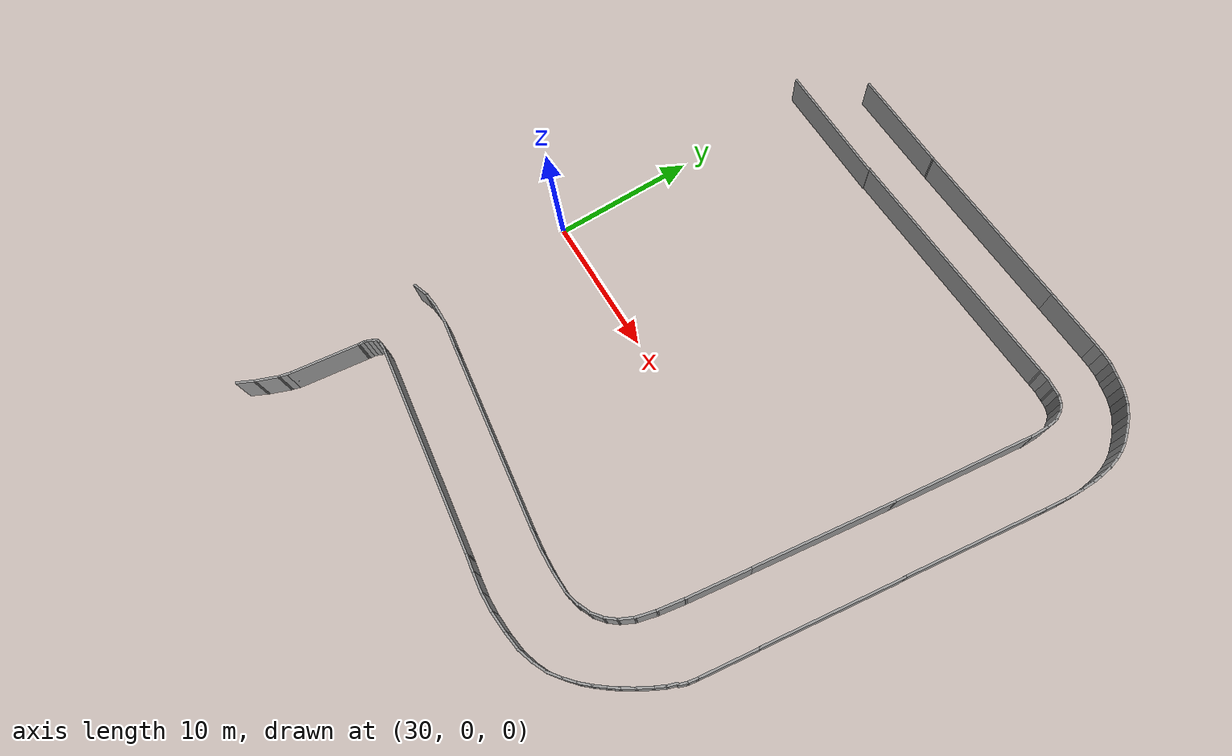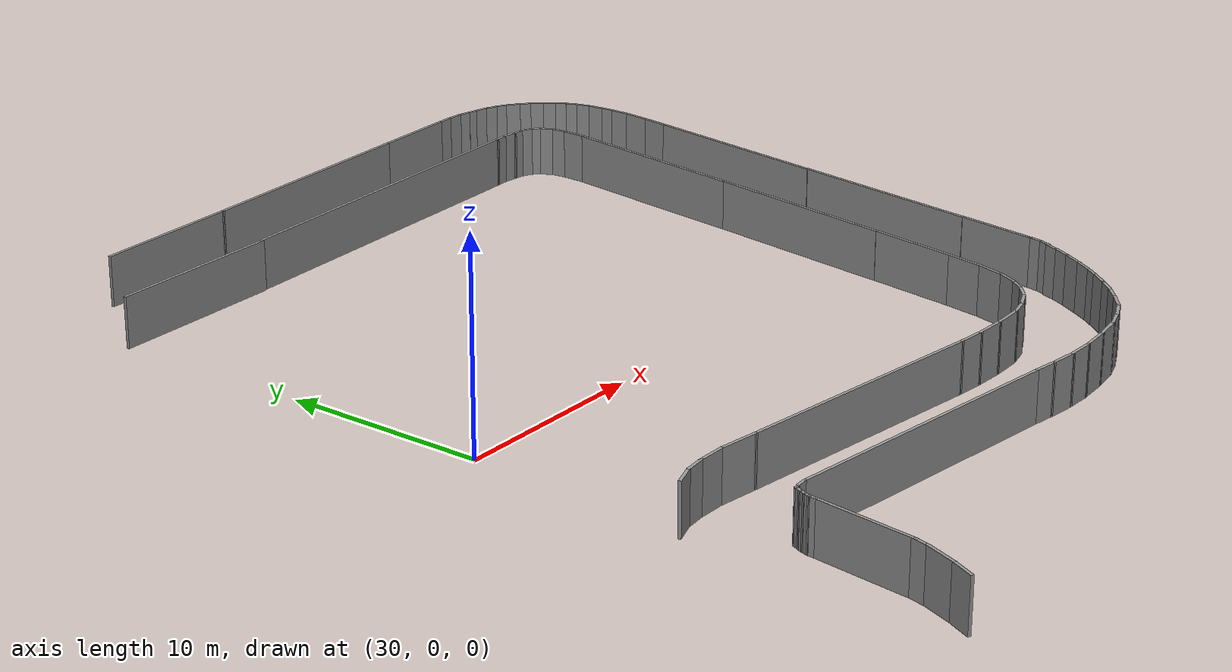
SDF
<sdf version="1.6">
 <model name="pista">
  <pose>-3.33646 -16.6519 0 0 -0 0</pose>
  <link name="Wall_10">
   <collision name="Wall_10_Collision">
    <geometry><box><size>12.6062 0.15 2.5</size></box></geometry>
    <pose>0 0 1.25 0 -0 0</pose>
   </collision>
   <visual name="Wall_10_Visual">
    <pose>0 0 1.25 0 -0 0</pose>
    <geometry><box><size>12.6062 0.15 2.5</size></box></geometry>
    <material>
     <script><uri>file://media/materials/scripts/gazebo.material</uri><name>Gazebo/Grey</name></script>
     <ambient>1 1 1 1</ambient>
    </material>
    <meta><layer>0</layer></meta>
   </visual>
   <pose>49.7072 41.1101 0 0 -0 0.034175</pose>
  </link>
  <link name="Wall_12">
   <collision name="Wall_12_Collision">
    <geometry><box><size>4.46128 0.15 2.5</size></box></geometry>
    <pose>0 0 1.25 0 -0 0</pose>
   </collision>
   <visual name="Wall_12_Visual">
    <pose>0 0 1.25 0 -0 0</pose>
    <geometry><box><size>4.46128 0.15 2.5</size></box></geometry>
    <material>
     <script><uri>file://media/materials/scripts/gazebo.material</uri><name>Gazebo/Grey</name></script>
     <ambient>1 1 1 1</ambient>
    </material>
    <meta><layer>0</layer></meta>
   </visual>
   <pose>58.0863 41.3894 0 0 -0 0.030854</pose>
  </link>
  <link name="Wall_13">
   <collision name="Wall_13_Collision">
    <geometry><box><size>0.894806 0.15 2.5</size></box></geometry>
    <pose>0 0 1.25 0 -0 0</pose>
   </collision>
   <visual name="Wall_13_Visual">
    <pose>0 0 1.25 0 -0 0</pose>
    <geometry><box><size>0.894806 0.15 2.5</size></box></geometry>
    <material>
     <script><uri>file://media/materials/scripts/gazebo.material</uri><name>Gazebo/Grey</name></script>
     <ambient>1 1 1 1</ambient>
    </material>
    <meta><layer>0</layer></meta>
   </visual>
   <pose>60.6133 41.4559 0 0 -0 0</pose>
  </link>
  <link name="Wall_14">
   <collision name="Wall_14_Collision">
    <geometry><box><size>0.923238 0.15 2.5</size></box></geometry>
    <pose>0 0 1.25 0 -0 0</pose>
   </collision>
   <visual name="Wall_14_Visual">
    <pose>0 0 1.25 0 -0 0</pose>
    <geometry><box><size>0.923238 0.15 2.5</size></box></geometry>
    <material>
     <script><uri>file://media/materials/scripts/gazebo.material</uri><name>Gazebo/Grey</name></script>
     <ambient>1 1 1 1</ambient>
    </material>
    <meta><layer>0</layer></meta>
   </visual>
   <pose>61.3714 41.4293 0 0 0 -0.068856</pose>
  </link>
  <link name="Wall_15">
   <collision name="Wall_15_Collision">
    <geometry><box><size>0.724219 0.15 2.5</size></box></geometry>
    <pose>0 0 1.25 0 -0 0</pose>
   </collision>
   <visual name="Wall_15_Visual">
    <pose>0 0 1.25 0 -0 0</pose>
    <geometry><box><size>0.724219 0.15 2.5</size></box></geometry>
    <material>
     <script><uri>file://media/materials/scripts/gazebo.material</uri><name>Gazebo/Grey</name></script>
     <ambient>1 1 1 1</ambient>
    </material>
    <meta><layer>0</layer></meta>
   </visual>
   <pose>62.0364 41.3362 0 0 0 -0.233743</pose>
  </link>
  <link name="Wall_17">
   <collision name="Wall_17_Collision">
    <geometry><box><size>0.530857 0.15 2.5</size></box></geometry>
    <pose>0 0 1.25 0 -0 0</pose>
   </collision>
   <visual name="Wall_17_Visual">
    <pose>0 0 1.25 0 -0 0</pose>
    <geometry><box><size>0.530857 0.15 2.5</size></box></geometry>
    <material>
     <script><uri>file://media/materials/scripts/gazebo.material</uri><name>Gazebo/Grey</name></script>
     <ambient>1 1 1 1</ambient>
    </material>
    <meta><layer>0</layer></meta>
   </visual>
   <pose>62.5817 41.2032 0 0 0 -0.211093</pose>
  </link>
  <link name="Wall_18">
   <collision name="Wall_18_Collision">
    <geometry><box><size>0.808053 0.15 2.5</size></box></geometry>
    <pose>0 0 1.25 0 -0 0</pose>
   </collision>
   <visual name="Wall_18_Visual">
    <pose>0 0 1.25 0 -0 0</pose>
    <geometry><box><size>0.808053 0.15 2.5</size></box></geometry>
    <material>
     <script><uri>file://media/materials/scripts/gazebo.material</uri><name>Gazebo/Grey</name></script>
     <ambient>1 1 1 1</ambient>
    </material>
    <meta><layer>0</layer></meta>
   </visual>
   <pose>63.0871 41.0835 0 0 0 -0.244979</pose>
  </link>
  <link name="Wall_19">
   <collision name="Wall_19_Collision">
    <geometry><box><size>0.78228 0.15 2.5</size></box></geometry>
    <pose>0 0 1.25 0 -0 0</pose>
   </collision>
   <visual name="Wall_19_Visual">
    <pose>0 0 1.25 0 -0 0</pose>
    <geometry><box><size>0.78228 0.15 2.5</size></box></geometry>
    <material>
     <script><uri>file://media/materials/scripts/gazebo.material</uri><name>Gazebo/Grey</name></script>
     <ambient>1 1 1 1</ambient>
    </material>
    <meta><layer>0</layer></meta>
   </visual>
   <pose>63.6989 40.884 0 0 0 -0.388319</pose>
  </link>
  <link name="Wall_20">
   <collision name="Wall_20_Collision">
    <geometry><box><size>0.72113 0.15 2.5</size></box></geometry>
    <pose>0 0 1.25 0 -0 0</pose>
   </collision>
   <visual name="Wall_20_Visual">
    <pose>0 0 1.25 0 -0 0</pose>
    <geometry><box><size>0.72113 0.15 2.5</size></box></geometry>
    <material>
     <script><uri>file://media/materials/scripts/gazebo.material</uri><name>Gazebo/Grey</name></script>
     <ambient>1 1 1 1</ambient>
    </material>
    <meta><layer>0</layer></meta>
   </visual>
   <pose>64.2442 40.6313 0 0 0 -0.484478</pose>
  </link>
  <link name="Wall_21">
   <collision name="Wall_21_Collision">
    <geometry><box><size>0.910784 0.15 2.5</size></box></geometry>
    <pose>0 0 1.25 0 -0 0</pose>
   </collision>
   <visual name="Wall_21_Visual">
    <pose>0 0 1.25 0 -0 0</pose>
    <geometry><box><size>0.910784 0.15 2.5</size></box></geometry>
    <material>
     <script><uri>file://media/materials/scripts/gazebo.material</uri><name>Gazebo/Grey</name></script>
     <ambient>1 1 1 1</ambient>
    </material>
    <meta><layer>0</layer></meta>
   </visual>
   <pose>64.8028 40.2721 0 0 0 -0.636508</pose>
  </link>
  <link name="Wall_22">
   <collision name="Wall_22_Collision">
    <geometry><box><size>0.733388 0.15 2.5</size></box></geometry>
    <pose>0 0 1.25 0 -0 0</pose>
   </collision>
   <visual name="Wall_22_Visual">
    <pose>0 0 1.25 0 -0 0</pose>
    <geometry><box><size>0.733388 0.15 2.5</size></box></geometry>
    <material>
     <script><uri>file://media/materials/scripts/gazebo.material</uri><name>Gazebo/Grey</name></script>
     <ambient>1 1 1 1</ambient>
    </material>
    <meta><layer>0</layer></meta>
   </visual>
   <pose>65.3215 39.8465 0 0 0 -0.753151</pose>
  </link>
  <link name="Wall_23">
   <collision name="Wall_23_Collision">
    <geometry><box><size>0.828175 0.15 2.5</size></box></geometry>
    <pose>0 0 1.25 0 -0 0</pose>
   </collision>
   <visual name="Wall_23_Visual">
    <pose>0 0 1.25 0 -0 0</pose>
    <geometry><box><size>0.828175 0.15 2.5</size></box></geometry>
    <material>
     <script><uri>file://media/materials/scripts/gazebo.material</uri><name>Gazebo/Grey</name></script>
     <ambient>1 1 1 1</ambient>
    </material>
    <meta><layer>0</layer></meta>
   </visual>
   <pose>65.7604 39.3943 0 0 0 -0.840897</pose>
  </link>
  <link name="Wall_24">
   <collision name="Wall_24_Collision">
    <geometry><box><size>0.793923 0.15 2.5</size></box></geometry>
    <pose>0 0 1.25 0 -0 0</pose>
   </collision>
   <visual name="Wall_24_Visual">
    <pose>0 0 1.25 0 -0 0</pose>
    <geometry><box><size>0.793923 0.15 2.5</size></box></geometry>
    <material>
     <script><uri>file://media/materials/scripts/gazebo.material</uri><name>Gazebo/Grey</name></script>
     <ambient>1 1 1 1</ambient>
    </material>
    <meta><layer>0</layer></meta>
   </visual>
   <pose>66.186 38.8889 0 0 0 -0.902507</pose>
  </link>
  <link name="Wall_25">
   <collision name="Wall_25_Collision">
    <geometry><box><size>0.733994 0.15 2.5</size></box></geometry>
    <pose>0 0 1.25 0 -0 0</pose>
   </collision>
   <visual name="Wall_25_Visual">
    <pose>0 0 1.25 0 -0 0</pose>
    <geometry><box><size>0.733994 0.15 2.5</size></box></geometry>
    <material>
     <script><uri>file://media/materials/scripts/gazebo.material</uri><name>Gazebo/Grey</name></script>
     <ambient>1 1 1 1</ambient>
    </material>
    <meta><layer>0</layer></meta>
   </visual>
   <pose>66.5318 38.3835 0 0 0 -1.046</pose>
  </link>
  <link name="Wall_26">
   <collision name="Wall_26_Collision">
    <geometry><box><size>0.78228 0.15 2.5</size></box></geometry>
    <pose>0 0 1.25 0 -0 0</pose>
   </collision>
   <visual name="Wall_26_Visual">
    <pose>0 0 1.25 0 -0 0</pose>
    <geometry><box><size>0.78228 0.15 2.5</size></box></geometry>
    <material>
     <script><uri>file://media/materials/scripts/gazebo.material</uri><name>Gazebo/Grey</name></script>
     <ambient>1 1 1 1</ambient>
    </material>
    <meta><layer>0</layer></meta>
   </visual>
   <pose>66.7978 37.8382 0 0 0 -1.18248</pose>
  </link>
  <link name="Wall_27">
   <collision name="Wall_27_Collision">
    <geometry><box><size>0.866232 0.15 2.5</size></box></geometry>
    <pose>0 0 1.25 0 -0 0</pose>
   </collision>
   <visual name="Wall_27_Visual">
    <pose>0 0 1.25 0 -0 0</pose>
    <geometry><box><size>0.866232 0.15 2.5</size></box></geometry>
    <material>
     <script><uri>file://media/materials/scripts/gazebo.material</uri><name>Gazebo/Grey</name></script>
     <ambient>1 1 1 1</ambient>
    </material>
    <meta><layer>0</layer></meta>
   </visual>
   <pose>67.0106 37.1998 0 0 0 -1.3078</pose>
  </link>
  <link name="Wall_28">
   <collision name="Wall_28_Collision">
    <geometry><box><size>0.955068 0.15 2.5</size></box></geometry>
    <pose>0 0 1.25 0 -0 0</pose>
   </collision>
   <visual name="Wall_28_Visual">
    <pose>0 0 1.25 0 -0 0</pose>
    <geometry><box><size>0.955068 0.15 2.5</size></box></geometry>
    <material>
     <script><uri>file://media/materials/scripts/gazebo.material</uri><name>Gazebo/Grey</name></script>
     <ambient>1 1 1 1</ambient>
    </material>
    <meta><layer>0</layer></meta>
   </visual>
   <pose>67.1569 36.455 0 0 0 -1.43824</pose>
  </link>
  <link name="Wall_29">
   <collision name="Wall_29_Collision">
    <geometry><box><size>0.737618 0.15 2.5</size></box></geometry>
    <pose>0 0 1.25 0 -0 0</pose>
   </collision>
   <visual name="Wall_29_Visual">
    <pose>0 0 1.25 0 -0 0</pose>
    <geometry><box><size>0.737618 0.15 2.5</size></box></geometry>
    <material>
     <script><uri>file://media/materials/scripts/gazebo.material</uri><name>Gazebo/Grey</name></script>
     <ambient>1 1 1 1</ambient>
    </material>
    <meta><layer>0</layer></meta>
   </visual>
   <pose>67.2367 35.7634 0 0 0 -1.48014</pose>
  </link>
  <link name="Wall_30">
   <collision name="Wall_30_Collision">
    <geometry><box><size>1.16116 0.15 2.5</size></box></geometry>
    <pose>0 0 1.25 0 -0 0</pose>
   </collision>
   <visual name="Wall_30_Visual">
    <pose>0 0 1.25 0 -0 0</pose>
    <geometry><box><size>1.16116 0.15 2.5</size></box></geometry>
    <material>
     <script><uri>file://media/materials/scripts/gazebo.material</uri><name>Gazebo/Grey</name></script>
     <ambient>1 1 1 1</ambient>
    </material>
    <meta><layer>0</layer></meta>
   </visual>
   <pose>67.2633 34.9654 0 0 0 -1.5708</pose>
  </link>
  <link name="Wall_31">
   <collision name="Wall_31_Collision">
    <geometry><box><size>1.45775 0.15 2.5</size></box></geometry>
    <pose>0 0 1.25 0 -0 0</pose>
   </collision>
   <visual name="Wall_31_Visual">
    <pose>0 0 1.25 0 -0 0</pose>
    <geometry><box><size>1.45775 0.15 2.5</size></box></geometry>
    <material>
     <script><uri>file://media/materials/scripts/gazebo.material</uri><name>Gazebo/Grey</name></script>
     <ambient>1 1 1 1</ambient>
    </material>
    <meta><layer>0</layer></meta>
   </visual>
   <pose>67.2101 33.8083 0 0 0 -1.65225</pose>
  </link>
  <link name="Wall_32">
   <collision name="Wall_32_Collision">
    <geometry><box><size>1.46314 0.15 2.5</size></box></geometry>
    <pose>0 0 1.25 0 -0 0</pose>
   </collision>
   <visual name="Wall_32_Visual">
    <pose>0 0 1.25 0 -0 0</pose>
    <geometry><box><size>1.46314 0.15 2.5</size></box></geometry>
    <material>
     <script><uri>file://media/materials/scripts/gazebo.material</uri><name>Gazebo/Grey</name></script>
     <ambient>1 1 1 1</ambient>
    </material>
    <meta><layer>0</layer></meta>
   </visual>
   <pose>67.0771 32.5049 0 0 0 -1.69264</pose>
  </link>
  <link name="Wall_36">
   <collision name="Wall_36_Collision">
    <geometry><box><size>10.078 0.15 2.5</size></box></geometry>
    <pose>0 0 1.25 0 -0 0</pose>
   </collision>
   <visual name="Wall_36_Visual">
    <pose>0 0 1.25 0 -0 0</pose>
    <geometry><box><size>10.078 0.15 2.5</size></box></geometry>
    <material>
     <script><uri>file://media/materials/scripts/gazebo.material</uri><name>Gazebo/Grey</name></script>
     <ambient>1 1 1 1</ambient>
    </material>
    <meta><layer>0</layer></meta>
   </visual>
   <pose>66.3456 26.9321 0 0 0 -1.70246</pose>
  </link>
  <link name="Wall_362">
   <collision name="Wall_362_Collision">
    <geometry><box><size>1.21832 0.15 2.5</size></box></geometry>
    <pose>0 0 1.25 0 -0 0</pose>
   </collision>
   <visual name="Wall_362_Visual">
    <pose>0 0 1.25 0 -0 0</pose>
    <geometry><box><size>1.21832 0.15 2.5</size></box></geometry>
    <material>
     <script><uri>file://media/materials/scripts/gazebo.material</uri><name>Gazebo/Grey</name></script>
     <ambient>1 1 1 1</ambient>
    </material>
    <meta><layer>0</layer></meta>
   </visual>
   <pose>33.2345 6.01828 0 0 -0 0.329624</pose>
  </link>
  <link name="Wall_363">
   <collision name="Wall_363_Collision">
    <geometry><box><size>1.13994 0.15 2.5</size></box></geometry>
    <pose>0 0 1.25 0 -0 0</pose>
   </collision>
   <visual name="Wall_363_Visual">
    <pose>0 0 1.25 0 -0 0</pose>
    <geometry><box><size>1.13994 0.15 2.5</size></box></geometry>
    <material>
     <script><uri>file://media/materials/scripts/gazebo.material</uri><name>Gazebo/Grey</name></script>
     <ambient>1 1 1 1</ambient>
    </material>
    <meta><layer>0</layer></meta>
   </visual>
   <pose>34.232 6.24438 0 0 -0 0.10769</pose>
  </link>
  <link name="Wall_364">
   <collision name="Wall_364_Collision">
    <geometry><box><size>1.48001 0.15 2.5</size></box></geometry>
    <pose>0 0 1.25 0 -0 0</pose>
   </collision>
   <visual name="Wall_364_Visual">
    <pose>0 0 1.25 0 -0 0</pose>
    <geometry><box><size>1.48001 0.15 2.5</size></box></geometry>
    <material>
     <script><uri>file://media/materials/scripts/gazebo.material</uri><name>Gazebo/Grey</name></script>
     <ambient>1 1 1 1</ambient>
    </material>
    <meta><layer>0</layer></meta>
   </visual>
   <pose>35.3891 6.29758 0 0 -0 0</pose>
  </link>
  <link name="Wall_365">
   <collision name="Wall_365_Collision">
    <geometry><box><size>2.13631 0.15 2.5</size></box></geometry>
    <pose>0 0 1.25 0 -0 0</pose>
   </collision>
   <visual name="Wall_365_Visual">
    <pose>0 0 1.25 0 -0 0</pose>
    <geometry><box><size>2.13631 0.15 2.5</size></box></geometry>
    <material>
     <script><uri>file://media/materials/scripts/gazebo.material</uri><name>Gazebo/Grey</name></script>
     <ambient>1 1 1 1</ambient>
    </material>
    <meta><layer>0</layer></meta>
   </visual>
   <pose>37.0383 6.16458 0 0 0 -0.134321</pose>
  </link>
  <link name="Wall_366">
   <collision name="Wall_366_Collision">
    <geometry><box><size>13.3936 0.15 2.5</size></box></geometry>
    <pose>0 0 1.25 0 -0 0</pose>
   </collision>
   <visual name="Wall_366_Visual">
    <pose>0 0 1.25 0 -0 0</pose>
    <geometry><box><size>13.3936 0.15 2.5</size></box></geometry>
    <material>
     <script><uri>file://media/materials/scripts/gazebo.material</uri><name>Gazebo/Grey</name></script>
     <ambient>1 1 1 1</ambient>
    </material>
    <meta><layer>0</layer></meta>
   </visual>
   <pose>44.5928 5.20698 0 0 0 -0.124853</pose>
  </link>
  <link name="Wall_367">
   <collision name="Wall_367_Collision">
    <geometry><box><size>1.51311 0.15 2.5</size></box></geometry>
    <pose>0 0 1.25 0 -0 0</pose>
   </collision>
   <visual name="Wall_367_Visual">
    <pose>0 0 1.25 0 -0 0</pose>
    <geometry><box><size>1.51311 0.15 2.5</size></box></geometry>
    <material>
     <script><uri>file://media/materials/scripts/gazebo.material</uri><name>Gazebo/Grey</name></script>
     <ambient>1 1 1 1</ambient>
    </material>
    <meta><layer>0</layer></meta>
   </visual>
   <pose>51.8413 4.31587 0 0 0 -0.097727</pose>
  </link>
  <link name="Wall_368">
   <collision name="Wall_368_Collision">
    <geometry><box><size>1.64056 0.15 2.5</size></box></geometry>
    <pose>0 0 1.25 0 -0 0</pose>
   </collision>
   <visual name="Wall_368_Visual">
    <pose>0 0 1.25 0 -0 0</pose>
    <geometry><box><size>1.64056 0.15 2.5</size></box></geometry>
    <material>
     <script><uri>file://media/materials/scripts/gazebo.material</uri><name>Gazebo/Grey</name></script>
     <ambient>1 1 1 1</ambient>
    </material>
    <meta><layer>0</layer></meta>
   </visual>
   <pose>53.2644 4.22277 0 0 0 -0.035699</pose>
  </link>
  <link name="Wall_369">
   <collision name="Wall_369_Collision">
    <geometry><box><size>1.72031 0.15 2.5</size></box></geometry>
    <pose>0 0 1.25 0 -0 0</pose>
   </collision>
   <visual name="Wall_369_Visual">
    <pose>0 0 1.25 0 -0 0</pose>
    <geometry><box><size>1.72031 0.15 2.5</size></box></geometry>
    <material>
     <script><uri>file://media/materials/scripts/gazebo.material</uri><name>Gazebo/Grey</name></script>
     <ambient>1 1 1 1</ambient>
    </material>
    <meta><layer>0</layer></meta>
   </visual>
   <pose>54.7939 4.22277 0 0 -0 0.033885</pose>
  </link>
  <link name="Wall_370">
   <collision name="Wall_370_Collision">
    <geometry><box><size>1.16291 0.15 2.5</size></box></geometry>
    <pose>0 0 1.25 0 -0 0</pose>
   </collision>
   <visual name="Wall_370_Visual">
    <pose>0 0 1.25 0 -0 0</pose>
    <geometry><box><size>1.16291 0.15 2.5</size></box></geometry>
    <material>
     <script><uri>file://media/materials/scripts/gazebo.material</uri><name>Gazebo/Grey</name></script>
     <ambient>1 1 1 1</ambient>
    </material>
    <meta><layer>0</layer></meta>
   </visual>
   <pose>56.0707 4.36907 0 0 -0 0.238609</pose>
  </link>
  <link name="Wall_372">
   <collision name="Wall_372_Collision">
    <geometry><box><size>1.0791 0.15 2.5</size></box></geometry>
    <pose>0 0 1.25 0 -0 0</pose>
   </collision>
   <visual name="Wall_372_Visual">
    <pose>0 0 1.25 0 -0 0</pose>
    <geometry><box><size>1.0791 0.15 2.5</size></box></geometry>
    <material>
     <script><uri>file://media/materials/scripts/gazebo.material</uri><name>Gazebo/Grey</name></script>
     <ambient>1 1 1 1</ambient>
    </material>
    <meta><layer>0</layer></meta>
   </visual>
   <pose>56.9619 4.70157 0 0 -0 0.41241</pose>
  </link>
  <link name="Wall_373">
   <collision name="Wall_373_Collision">
    <geometry><box><size>1.03902 0.15 2.5</size></box></geometry>
    <pose>0 0 1.25 0 -0 0</pose>
   </collision>
   <visual name="Wall_373_Visual">
    <pose>0 0 1.25 0 -0 0</pose>
    <geometry><box><size>1.03902 0.15 2.5</size></box></geometry>
    <material>
     <script><uri>file://media/materials/scripts/gazebo.material</uri><name>Gazebo/Grey</name></script>
     <ambient>1 1 1 1</ambient>
    </material>
    <meta><layer>0</layer></meta>
   </visual>
   <pose>57.7333 5.16707 0 0 -0 0.679414</pose>
  </link>
  <link name="Wall_374">
   <collision name="Wall_374_Collision">
    <geometry><box><size>0.964244 0.15 2.5</size></box></geometry>
    <pose>0 0 1.25 0 -0 0</pose>
   </collision>
   <visual name="Wall_374_Visual">
    <pose>0 0 1.25 0 -0 0</pose>
    <geometry><box><size>0.964244 0.15 2.5</size></box></geometry>
    <material>
     <script><uri>file://media/materials/scripts/gazebo.material</uri><name>Gazebo/Grey</name></script>
     <ambient>1 1 1 1</ambient>
    </material>
    <meta><layer>0</layer></meta>
   </visual>
   <pose>58.3318 5.76558 0 0 -0 0.901157</pose>
  </link>
  <link name="Wall_375">
   <collision name="Wall_375_Collision">
    <geometry><box><size>1.16116 0.15 2.5</size></box></geometry>
    <pose>0 0 1.25 0 -0 0</pose>
   </collision>
   <visual name="Wall_375_Visual">
    <pose>0 0 1.25 0 -0 0</pose>
    <geometry><box><size>1.16116 0.15 2.5</size></box></geometry>
    <material>
     <script><uri>file://media/materials/scripts/gazebo.material</uri><name>Gazebo/Grey</name></script>
     <ambient>1 1 1 1</ambient>
    </material>
    <meta><layer>0</layer></meta>
   </visual>
   <pose>58.8106 6.53698 0 0 -0 1.10715</pose>
  </link>
  <link name="Wall_376">
   <collision name="Wall_376_Collision">
    <geometry><box><size>1.52423 0.15 2.5</size></box></geometry>
    <pose>0 0 1.25 0 -0 0</pose>
   </collision>
   <visual name="Wall_376_Visual">
    <pose>0 0 1.25 0 -0 0</pose>
    <geometry><box><size>1.52423 0.15 2.5</size></box></geometry>
    <material>
     <script><uri>file://media/materials/scripts/gazebo.material</uri><name>Gazebo/Grey</name></script>
     <ambient>1 1 1 1</ambient>
    </material>
    <meta><layer>0</layer></meta>
   </visual>
   <pose>59.2096 7.65419 0 0 -0 1.31643</pose>
  </link>
  <link name="Wall_377">
   <collision name="Wall_377_Collision">
    <geometry><box><size>1.98676 0.15 2.5</size></box></geometry>
    <pose>0 0 1.25 0 -0 0</pose>
   </collision>
   <visual name="Wall_377_Visual">
    <pose>0 0 1.25 0 -0 0</pose>
    <geometry><box><size>1.98676 0.15 2.5</size></box></geometry>
    <material>
     <script><uri>file://media/materials/scripts/gazebo.material</uri><name>Gazebo/Grey</name></script>
     <ambient>1 1 1 1</ambient>
    </material>
    <meta><layer>0</layer></meta>
   </visual>
   <pose>59.5421 9.22361 0 0 -0 1.39612</pose>
  </link>
  <link name="Wall_378">
   <collision name="Wall_378_Collision">
    <geometry><box><size>4.50245 0.15 2.5</size></box></geometry>
    <pose>0 0 1.25 0 -0 0</pose>
   </collision>
   <visual name="Wall_378_Visual">
    <pose>0 0 1.25 0 -0 0</pose>
    <geometry><box><size>4.50245 0.15 2.5</size></box></geometry>
    <material>
     <script><uri>file://media/materials/scripts/gazebo.material</uri><name>Gazebo/Grey</name></script>
     <ambient>1 1 1 1</ambient>
    </material>
    <meta><layer>0</layer></meta>
   </visual>
   <pose>60.0076 12.2826 0 0 -0 1.42976</pose>
  </link>
  <link name="Wall_380">
   <collision name="Wall_380_Collision">
    <geometry><box><size>9.89704 0.15 2.5</size></box></geometry>
    <pose>0 0 1.25 0 -0 0</pose>
   </collision>
   <visual name="Wall_380_Visual">
    <pose>0 0 1.25 0 -0 0</pose>
    <geometry><box><size>9.89704 0.15 2.5</size></box></geometry>
    <material>
     <script><uri>file://media/materials/scripts/gazebo.material</uri><name>Gazebo/Grey</name></script>
     <ambient>1 1 1 1</ambient>
    </material>
    <meta><layer>0</layer></meta>
   </visual>
   <pose>60.9785 19.3716 0 0 -0 1.43392</pose>
  </link>
  <link name="Wall_382">
   <collision name="Wall_382_Collision">
    <geometry><box><size>10.0184 0.15 2.5</size></box></geometry>
    <pose>0 0 1.25 0 -0 0</pose>
   </collision>
   <visual name="Wall_382_Visual">
    <pose>0 0 1.25 0 -0 0</pose>
    <geometry><box><size>10.0184 0.15 2.5</size></box></geometry>
    <material>
     <script><uri>file://media/materials/scripts/gazebo.material</uri><name>Gazebo/Grey</name></script>
     <ambient>1 1 1 1</ambient>
    </material>
    <meta><layer>0</layer></meta>
   </visual>
   <pose>62.2686 29.094 0 0 -0 1.44377</pose>
  </link>
  <link name="Wall_384">
   <collision name="Wall_384_Collision">
    <geometry><box><size>18.2219 0.15 2.5</size></box></geometry>
    <pose>0 0 1.25 0 -0 0</pose>
   </collision>
   <visual name="Wall_384_Visual">
    <pose>0 0 1.25 0 -0 0</pose>
    <geometry><box><size>18.2219 0.15 2.5</size></box></geometry>
    <material>
     <script><uri>file://media/materials/scripts/gazebo.material</uri><name>Gazebo/Grey</name></script>
     <ambient>1 1 1 1</ambient>
    </material>
    <meta><layer>0</layer></meta>
   </visual>
   <pose>50.7773 36.9543 0 0 -0 0.03386</pose>
  </link>
  <link name="Wall_385">
   <collision name="Wall_385_Collision">
    <geometry><box><size>0.815537 0.15 2.5</size></box></geometry>
    <pose>0 0 1.25 0 -0 0</pose>
   </collision>
   <visual name="Wall_385_Visual">
    <pose>0 0 1.25 0 -0 0</pose>
    <geometry><box><size>0.815537 0.15 2.5</size></box></geometry>
    <material>
     <script><uri>file://media/materials/scripts/gazebo.material</uri><name>Gazebo/Grey</name></script>
     <ambient>1 1 1 1</ambient>
    </material>
    <meta><layer>0</layer></meta>
   </visual>
   <pose>60.1406 37.2735 0 0 -0 0.039979</pose>
  </link>
  <link name="Wall_386">
   <collision name="Wall_386_Collision">
    <geometry><box><size>0.846194 0.15 2.5</size></box></geometry>
    <pose>0 0 1.25 0 -0 0</pose>
   </collision>
   <visual name="Wall_386_Visual">
    <pose>0 0 1.25 0 -0 0</pose>
    <geometry><box><size>0.846194 0.15 2.5</size></box></geometry>
    <material>
     <script><uri>file://media/materials/scripts/gazebo.material</uri><name>Gazebo/Grey</name></script>
     <ambient>1 1 1 1</ambient>
    </material>
    <meta><layer>0</layer></meta>
   </visual>
   <pose>60.8189 37.2469 0 0 0 -0.114877</pose>
  </link>
  <link name="Wall_387">
   <collision name="Wall_387_Collision">
    <geometry><box><size>0.684657 0.15 2.5</size></box></geometry>
    <pose>0 0 1.25 0 -0 0</pose>
   </collision>
   <visual name="Wall_387_Visual">
    <pose>0 0 1.25 0 -0 0</pose>
    <geometry><box><size>0.684657 0.15 2.5</size></box></geometry>
    <material>
     <script><uri>file://media/materials/scripts/gazebo.material</uri><name>Gazebo/Grey</name></script>
     <ambient>1 1 1 1</ambient>
    </material>
    <meta><layer>0</layer></meta>
   </visual>
   <pose>61.4307 37.1804 0 0 0 -0.099669</pose>
  </link>
  <link name="Wall_388">
   <collision name="Wall_388_Collision">
    <geometry><box><size>0.733388 0.15 2.5</size></box></geometry>
    <pose>0 0 1.25 0 -0 0</pose>
   </collision>
   <visual name="Wall_388_Visual">
    <pose>0 0 1.25 0 -0 0</pose>
    <geometry><box><size>0.733388 0.15 2.5</size></box></geometry>
    <material>
     <script><uri>file://media/materials/scripts/gazebo.material</uri><name>Gazebo/Grey</name></script>
     <ambient>1 1 1 1</ambient>
    </material>
    <meta><layer>0</layer></meta>
   </visual>
   <pose>61.9627 37.0341 0 0 0 -0.422854</pose>
  </link>
  <link name="Wall_389">
   <collision name="Wall_389_Collision">
    <geometry><box><size>0.60142 0.15 2.5</size></box></geometry>
    <pose>0 0 1.25 0 -0 0</pose>
   </collision>
   <visual name="Wall_389_Visual">
    <pose>0 0 1.25 0 -0 0</pose>
    <geometry><box><size>0.60142 0.15 2.5</size></box></geometry>
    <material>
     <script><uri>file://media/materials/scripts/gazebo.material</uri><name>Gazebo/Grey</name></script>
     <ambient>1 1 1 1</ambient>
    </material>
    <meta><layer>0</layer></meta>
   </visual>
   <pose>62.3883 36.7548 0 0 0 -0.785398</pose>
  </link>
  <link name="Wall_39">
   <collision name="Wall_39_Collision">
    <geometry><box><size>9.91629 0.15 2.5</size></box></geometry>
    <pose>0 0 1.25 0 -0 0</pose>
   </collision>
   <visual name="Wall_39_Visual">
    <pose>0 0 1.25 0 -0 0</pose>
    <geometry><box><size>9.91629 0.15 2.5</size></box></geometry>
    <material>
     <script><uri>file://media/materials/scripts/gazebo.material</uri><name>Gazebo/Grey</name></script>
     <ambient>1 1 1 1</ambient>
    </material>
    <meta><layer>0</layer></meta>
   </visual>
   <pose>65.0821 17.1433 0 0 0 -1.70191</pose>
  </link>
  <link name="Wall_390">
   <collision name="Wall_390_Collision">
    <geometry><box><size>0.816599 0.15 2.5</size></box></geometry>
    <pose>0 0 1.25 0 -0 0</pose>
   </collision>
   <visual name="Wall_390_Visual">
    <pose>0 0 1.25 0 -0 0</pose>
    <geometry><box><size>0.816599 0.15 2.5</size></box></geometry>
    <material>
     <script><uri>file://media/materials/scripts/gazebo.material</uri><name>Gazebo/Grey</name></script>
     <ambient>1 1 1 1</ambient>
    </material>
    <meta><layer>0</layer></meta>
   </visual>
   <pose>62.7075 36.3026 0 0 0 -1.07145</pose>
  </link>
  <link name="Wall_391">
   <collision name="Wall_391_Collision">
    <geometry><box><size>0.899068 0.15 2.5</size></box></geometry>
    <pose>0 0 1.25 0 -0 0</pose>
   </collision>
   <visual name="Wall_391_Visual">
    <pose>0 0 1.25 0 -0 0</pose>
    <geometry><box><size>0.899068 0.15 2.5</size></box></geometry>
    <material>
     <script><uri>file://media/materials/scripts/gazebo.material</uri><name>Gazebo/Grey</name></script>
     <ambient>1 1 1 1</ambient>
    </material>
    <meta><layer>0</layer></meta>
   </visual>
   <pose>62.907 35.6376 0 0 0 -1.46406</pose>
  </link>
  <link name="Wall_392">
   <collision name="Wall_392_Collision">
    <geometry><box><size>1.40049 0.15 2.5</size></box></geometry>
    <pose>0 0 1.25 0 -0 0</pose>
   </collision>
   <visual name="Wall_392_Visual">
    <pose>0 0 1.25 0 -0 0</pose>
    <geometry><box><size>1.40049 0.15 2.5</size></box></geometry>
    <material>
     <script><uri>file://media/materials/scripts/gazebo.material</uri><name>Gazebo/Grey</name></script>
     <ambient>1 1 1 1</ambient>
    </material>
    <meta><layer>0</layer></meta>
   </visual>
   <pose>62.9336 34.6401 0 0 0 -1.59207</pose>
  </link>
  <link name="Wall_394">
   <collision name="Wall_394_Collision">
    <geometry><box><size>8.90183 0.15 2.5</size></box></geometry>
    <pose>0 0 1.25 0 -0 0</pose>
   </collision>
   <visual name="Wall_394_Visual">
    <pose>0 0 1.25 0 -0 0</pose>
    <geometry><box><size>8.90183 0.15 2.5</size></box></geometry>
    <material>
     <script><uri>file://media/materials/scripts/gazebo.material</uri><name>Gazebo/Grey</name></script>
     <ambient>1 1 1 1</ambient>
    </material>
    <meta><layer>0</layer></meta>
   </visual>
   <pose>37.3708 36.5553 0 0 0 -3.13247</pose>
  </link>
  <link name="Wall_41">
   <collision name="Wall_41_Collision">
    <geometry><box><size>1.22591 0.15 2.5</size></box></geometry>
    <pose>0 0 1.25 0 -0 0</pose>
   </collision>
   <visual name="Wall_41_Visual">
    <pose>0 0 1.25 0 -0 0</pose>
    <geometry><box><size>1.22591 0.15 2.5</size></box></geometry>
    <material>
     <script><uri>file://media/materials/scripts/gazebo.material</uri><name>Gazebo/Grey</name></script>
     <ambient>1 1 1 1</ambient>
    </material>
    <meta><layer>0</layer></meta>
   </visual>
   <pose>50.955 0.198948 0 0 0 -0.14889</pose>
  </link>
  <link name="Wall_42">
   <collision name="Wall_42_Collision">
    <geometry><box><size>1.54239 0.15 2.5</size></box></geometry>
    <pose>0 0 1.25 0 -0 0</pose>
   </collision>
   <visual name="Wall_42_Visual">
    <pose>0 0 1.25 0 -0 0</pose>
    <geometry><box><size>1.54239 0.15 2.5</size></box></geometry>
    <material>
     <script><uri>file://media/materials/scripts/gazebo.material</uri><name>Gazebo/Grey</name></script>
     <ambient>1 1 1 1</ambient>
    </material>
    <meta><layer>0</layer></meta>
   </visual>
   <pose>52.1786 0.039347 0 0 0 -0.114877</pose>
  </link>
  <link name="Wall_43">
   <collision name="Wall_43_Collision">
    <geometry><box><size>1.42792 0.15 2.5</size></box></geometry>
    <pose>0 0 1.25 0 -0 0</pose>
   </collision>
   <visual name="Wall_43_Visual">
    <pose>0 0 1.25 0 -0 0</pose>
    <geometry><box><size>1.42792 0.15 2.5</size></box></geometry>
    <material>
     <script><uri>file://media/materials/scripts/gazebo.material</uri><name>Gazebo/Grey</name></script>
     <ambient>1 1 1 1</ambient>
    </material>
    <meta><layer>0</layer></meta>
   </visual>
   <pose>53.5086 -0.053755 0 0 0 -0.02083</pose>
  </link>
  <link name="Wall_44">
   <collision name="Wall_44_Collision">
    <geometry><box><size>1.61688 0.15 2.5</size></box></geometry>
    <pose>0 0 1.25 0 -0 0</pose>
   </collision>
   <visual name="Wall_44_Visual">
    <pose>0 0 1.25 0 -0 0</pose>
    <geometry><box><size>1.61688 0.15 2.5</size></box></geometry>
    <material>
     <script><uri>file://media/materials/scripts/gazebo.material</uri><name>Gazebo/Grey</name></script>
     <ambient>1 1 1 1</ambient>
    </material>
    <meta><layer>0</layer></meta>
   </visual>
   <pose>54.8785 -0.013853 0 0 -0 0.072599</pose>
  </link>
  <link name="Wall_45">
   <collision name="Wall_45_Collision">
    <geometry><box><size>1.49298 0.15 2.5</size></box></geometry>
    <pose>0 0 1.25 0 -0 0</pose>
   </collision>
   <visual name="Wall_45_Visual">
    <pose>0 0 1.25 0 -0 0</pose>
    <geometry><box><size>1.49298 0.15 2.5</size></box></geometry>
    <material>
     <script><uri>file://media/materials/scripts/gazebo.material</uri><name>Gazebo/Grey</name></script>
     <ambient>1 1 1 1</ambient>
    </material>
    <meta><layer>0</layer></meta>
   </visual>
   <pose>56.275 0.132448 0 0 -0 0.139096</pose>
  </link>
  <link name="Wall_46">
   <collision name="Wall_46_Collision">
    <geometry><box><size>1.24352 0.15 2.5</size></box></geometry>
    <pose>0 0 1.25 0 -0 0</pose>
   </collision>
   <visual name="Wall_46_Visual">
    <pose>0 0 1.25 0 -0 0</pose>
    <geometry><box><size>1.24352 0.15 2.5</size></box></geometry>
    <material>
     <script><uri>file://media/materials/scripts/gazebo.material</uri><name>Gazebo/Grey</name></script>
     <ambient>1 1 1 1</ambient>
    </material>
    <meta><layer>0</layer></meta>
   </visual>
   <pose>57.4587 0.398449 0 0 -0 0.321751</pose>
  </link>
  <link name="Wall_47">
   <collision name="Wall_47_Collision">
    <geometry><box><size>1.17368 0.15 2.5</size></box></geometry>
    <pose>0 0 1.25 0 -0 0</pose>
   </collision>
   <visual name="Wall_47_Visual">
    <pose>0 0 1.25 0 -0 0</pose>
    <geometry><box><size>1.17368 0.15 2.5</size></box></geometry>
    <material>
     <script><uri>file://media/materials/scripts/gazebo.material</uri><name>Gazebo/Grey</name></script>
     <ambient>1 1 1 1</ambient>
    </material>
    <meta><layer>0</layer></meta>
   </visual>
   <pose>58.4429 0.784152 0 0 -0 0.428778</pose>
  </link>
  <link name="Wall_48">
   <collision name="Wall_48_Collision">
    <geometry><box><size>1.15554 0.15 2.5</size></box></geometry>
    <pose>0 0 1.25 0 -0 0</pose>
   </collision>
   <visual name="Wall_48_Visual">
    <pose>0 0 1.25 0 -0 0</pose>
    <geometry><box><size>1.15554 0.15 2.5</size></box></geometry>
    <material>
     <script><uri>file://media/materials/scripts/gazebo.material</uri><name>Gazebo/Grey</name></script>
     <ambient>1 1 1 1</ambient>
    </material>
    <meta><layer>0</layer></meta>
   </visual>
   <pose>59.3074 1.30286 0 0 -0 0.654083</pose>
  </link>
  <link name="Wall_49">
   <collision name="Wall_49_Collision">
    <geometry><box><size>1.11093 0.15 2.5</size></box></geometry>
    <pose>0 0 1.25 0 -0 0</pose>
   </collision>
   <visual name="Wall_49_Visual">
    <pose>0 0 1.25 0 -0 0</pose>
    <geometry><box><size>1.11093 0.15 2.5</size></box></geometry>
    <material>
     <script><uri>file://media/materials/scripts/gazebo.material</uri><name>Gazebo/Grey</name></script>
     <ambient>1 1 1 1</ambient>
    </material>
    <meta><layer>0</layer></meta>
   </visual>
   <pose>60.0655 1.92796 0 0 -0 0.726642</pose>
  </link>
  <link name="Wall_50">
   <collision name="Wall_50_Collision">
    <geometry><box><size>0.978458 0.15 2.5</size></box></geometry>
    <pose>0 0 1.25 0 -0 0</pose>
   </collision>
   <visual name="Wall_50_Visual">
    <pose>0 0 1.25 0 -0 0</pose>
    <geometry><box><size>0.978458 0.15 2.5</size></box></geometry>
    <material>
     <script><uri>file://media/materials/scripts/gazebo.material</uri><name>Gazebo/Grey</name></script>
     <ambient>1 1 1 1</ambient>
    </material>
    <meta><layer>0</layer></meta>
   </visual>
   <pose>60.7039 2.55307 0 0 -0 0.830821</pose>
  </link>
  <link name="Wall_51">
   <collision name="Wall_51_Collision">
    <geometry><box><size>1.13457 0.15 2.5</size></box></geometry>
    <pose>0 0 1.25 0 -0 0</pose>
   </collision>
   <visual name="Wall_51_Visual">
    <pose>0 0 1.25 0 -0 0</pose>
    <geometry><box><size>1.13457 0.15 2.5</size></box></geometry>
    <material>
     <script><uri>file://media/materials/scripts/gazebo.material</uri><name>Gazebo/Grey</name></script>
     <ambient>1 1 1 1</ambient>
    </material>
    <meta><layer>0</layer></meta>
   </visual>
   <pose>61.2892 3.24467 0 0 -0 0.900275</pose>
  </link>
  <link name="Wall_52">
   <collision name="Wall_52_Collision">
    <geometry><box><size>0.777787 0.15 2.5</size></box></geometry>
    <pose>0 0 1.25 0 -0 0</pose>
   </collision>
   <visual name="Wall_52_Visual">
    <pose>0 0 1.25 0 -0 0</pose>
    <geometry><box><size>0.777787 0.15 2.5</size></box></geometry>
    <material>
     <script><uri>file://media/materials/scripts/gazebo.material</uri><name>Gazebo/Grey</name></script>
     <ambient>1 1 1 1</ambient>
    </material>
    <meta><layer>0</layer></meta>
   </visual>
   <pose>61.7813 3.88308 0 0 -0 0.93577</pose>
  </link>
  <link name="Wall_53">
   <collision name="Wall_53_Collision">
    <geometry><box><size>1.09459 0.15 2.5</size></box></geometry>
    <pose>0 0 1.25 0 -0 0</pose>
   </collision>
   <visual name="Wall_53_Visual">
    <pose>0 0 1.25 0 -0 0</pose>
    <geometry><box><size>1.09459 0.15 2.5</size></box></geometry>
    <material>
     <script><uri>file://media/materials/scripts/gazebo.material</uri><name>Gazebo/Grey</name></script>
     <ambient>1 1 1 1</ambient>
    </material>
    <meta><layer>0</layer></meta>
   </visual>
   <pose>62.2202 4.53478 0 0 -0 1.00623</pose>
  </link>
  <link name="Wall_54">
   <collision name="Wall_54_Collision">
    <geometry><box><size>1.16291 0.15 2.5</size></box></geometry>
    <pose>0 0 1.25 0 -0 0</pose>
   </collision>
   <visual name="Wall_54_Visual">
    <pose>0 0 1.25 0 -0 0</pose>
    <geometry><box><size>1.16291 0.15 2.5</size></box></geometry>
    <material>
     <script><uri>file://media/materials/scripts/gazebo.material</uri><name>Gazebo/Grey</name></script>
     <ambient>1 1 1 1</ambient>
    </material>
    <meta><layer>0</layer></meta>
   </visual>
   <pose>62.7256 5.37269 0 0 -0 1.04839</pose>
  </link>
  <link name="Wall_55">
   <collision name="Wall_55_Collision">
    <geometry><box><size>0.982718 0.15 2.5</size></box></geometry>
    <pose>0 0 1.25 0 -0 0</pose>
   </collision>
   <visual name="Wall_55_Visual">
    <pose>0 0 1.25 0 -0 0</pose>
    <geometry><box><size>0.982718 0.15 2.5</size></box></geometry>
    <material>
     <script><uri>file://media/materials/scripts/gazebo.material</uri><name>Gazebo/Grey</name></script>
     <ambient>1 1 1 1</ambient>
    </material>
    <meta><layer>0</layer></meta>
   </visual>
   <pose>63.1645 6.18399 0 0 -0 1.10715</pose>
  </link>
  <link name="Wall_56">
   <collision name="Wall_56_Collision">
    <geometry><box><size>0.772695 0.15 2.5</size></box></geometry>
    <pose>0 0 1.25 0 -0 0</pose>
   </collision>
   <visual name="Wall_56_Visual">
    <pose>0 0 1.25 0 -0 0</pose>
    <geometry><box><size>0.772695 0.15 2.5</size></box></geometry>
    <material>
     <script><uri>file://media/materials/scripts/gazebo.material</uri><name>Gazebo/Grey</name></script>
     <ambient>1 1 1 1</ambient>
    </material>
    <meta><layer>0</layer></meta>
   </visual>
   <pose>63.4571 6.849 0 0 -0 1.22202</pose>
  </link>
  <link name="Wall_58">
   <collision name="Wall_58_Collision">
    <geometry><box><size>4.22808 0.15 2.5</size></box></geometry>
    <pose>0 0 1.25 0 -0 0</pose>
   </collision>
   <visual name="Wall_58_Visual">
    <pose>0 0 1.25 0 -0 0</pose>
    <geometry><box><size>4.22808 0.15 2.5</size></box></geometry>
    <material>
     <script><uri>file://media/materials/scripts/gazebo.material</uri><name>Gazebo/Grey</name></script>
     <ambient>1 1 1 1</ambient>
    </material>
    <meta><layer>0</layer></meta>
   </visual>
   <pose>64.2019 10.2804 0 0 0 -1.70162</pose>
  </link>
  <link name="Wall_59">
   <collision name="Wall_59_Collision">
    <geometry><box><size>0.744799 0.15 2.5</size></box></geometry>
    <pose>0 0 1.25 0 -0 0</pose>
   </collision>
   <visual name="Wall_59_Visual">
    <pose>0 0 1.25 0 -0 0</pose>
    <geometry><box><size>0.744799 0.15 2.5</size></box></geometry>
    <material>
     <script><uri>file://media/materials/scripts/gazebo.material</uri><name>Gazebo/Grey</name></script>
     <ambient>1 1 1 1</ambient>
    </material>
    <meta><layer>0</layer></meta>
   </visual>
   <pose>63.8827 7.96621 0 0 0 -1.75065</pose>
  </link>
  <link name="Wall_60">
   <collision name="Wall_60_Collision">
    <geometry><box><size>0.713648 0.15 2.5</size></box></geometry>
    <pose>0 0 1.25 0 -0 0</pose>
   </collision>
   <visual name="Wall_60_Visual">
    <pose>0 0 1.25 0 -0 0</pose>
    <geometry><box><size>0.713648 0.15 2.5</size></box></geometry>
    <material>
     <script><uri>file://media/materials/scripts/gazebo.material</uri><name>Gazebo/Grey</name></script>
     <ambient>1 1 1 1</ambient>
    </material>
    <meta><layer>0</layer></meta>
   </visual>
   <pose>63.7364 7.4076 0 0 0 -1.90747</pose>
  </link>
  <link name="Wall_62">
   <collision name="Wall_62_Collision">
    <geometry><box><size>15.0604 0.15 2.5</size></box></geometry>
    <pose>0 0 1.25 0 -0 0</pose>
   </collision>
   <visual name="Wall_62_Visual">
    <pose>0 0 1.25 0 -0 0</pose>
    <geometry><box><size>15.0604 0.15 2.5</size></box></geometry>
    <material>
     <script><uri>file://media/materials/scripts/gazebo.material</uri><name>Gazebo/Grey</name></script>
     <ambient>1 1 1 1</ambient>
    </material>
    <meta><layer>0</layer></meta>
   </visual>
   <pose>43.0216 1.17327 0 0 -0 3.02132</pose>
  </link>
  <link name="Wall_63">
   <collision name="Wall_63_Collision">
    <geometry><box><size>0.628804 0.15 2.5</size></box></geometry>
    <pose>0 0 1.25 0 -0 0</pose>
   </collision>
   <visual name="Wall_63_Visual">
    <pose>0 0 1.25 0 -0 0</pose>
    <geometry><box><size>0.628804 0.15 2.5</size></box></geometry>
    <material>
     <script><uri>file://media/materials/scripts/gazebo.material</uri><name>Gazebo/Grey</name></script>
     <ambient>1 1 1 1</ambient>
    </material>
    <meta><layer>0</layer></meta>
   </visual>
   <pose>35.3809 2.05448 0 0 0 -3.08609</pose>
  </link>
  <link name="Wall_64">
   <collision name="Wall_64_Collision">
    <geometry><box><size>0.402352 0.15 2.5</size></box></geometry>
    <pose>0 0 1.25 0 -0 0</pose>
   </collision>
   <visual name="Wall_64_Visual">
    <pose>0 0 1.25 0 -0 0</pose>
    <geometry><box><size>0.402352 0.15 2.5</size></box></geometry>
    <material>
     <script><uri>file://media/materials/scripts/gazebo.material</uri><name>Gazebo/Grey</name></script>
     <ambient>1 1 1 1</ambient>
    </material>
    <meta><layer>0</layer></meta>
   </visual>
   <pose>35.0218 2.00128 0 0 0 -2.81984</pose>
  </link>
  <link name="Wall_65">
   <collision name="Wall_65_Collision">
    <geometry><box><size>0.447399 0.15 2.5</size></box></geometry>
    <pose>0 0 1.25 0 -0 0</pose>
   </collision>
   <visual name="Wall_65_Visual">
    <pose>0 0 1.25 0 -0 0</pose>
    <geometry><box><size>0.447399 0.15 2.5</size></box></geometry>
    <material>
     <script><uri>file://media/materials/scripts/gazebo.material</uri><name>Gazebo/Grey</name></script>
     <ambient>1 1 1 1</ambient>
    </material>
    <meta><layer>0</layer></meta>
   </visual>
   <pose>34.8356 1.82838 0 0 0 -2.03444</pose>
  </link>
  <link name="Wall_66">
   <collision name="Wall_66_Collision">
    <geometry><box><size>0.436493 0.15 2.5</size></box></geometry>
    <pose>0 0 1.25 0 -0 0</pose>
   </collision>
   <visual name="Wall_66_Visual">
    <pose>0 0 1.25 0 -0 0</pose>
    <geometry><box><size>0.436493 0.15 2.5</size></box></geometry>
    <material>
     <script><uri>file://media/materials/scripts/gazebo.material</uri><name>Gazebo/Grey</name></script>
     <ambient>1 1 1 1</ambient>
    </material>
    <meta><layer>0</layer></meta>
   </visual>
   <pose>34.7159 1.56238 0 0 0 -1.9513</pose>
  </link>
  <link name="Wall_67">
   <collision name="Wall_67_Collision">
    <geometry><box><size>0.427714 0.15 2.5</size></box></geometry>
    <pose>0 0 1.25 0 -0 0</pose>
   </collision>
   <visual name="Wall_67_Visual">
    <pose>0 0 1.25 0 -0 0</pose>
    <geometry><box><size>0.427714 0.15 2.5</size></box></geometry>
    <material>
     <script><uri>file://media/materials/scripts/gazebo.material</uri><name>Gazebo/Grey</name></script>
     <ambient>1 1 1 1</ambient>
    </material>
    <meta><layer>0</layer></meta>
   </visual>
   <pose>34.6228 1.29637 0 0 0 -1.86225</pose>
  </link>
  <link name="Wall_68">
   <collision name="Wall_68_Collision">
    <geometry><box><size>0.496824 0.15 2.5</size></box></geometry>
    <pose>0 0 1.25 0 -0 0</pose>
   </collision>
   <visual name="Wall_68_Visual">
    <pose>0 0 1.25 0 -0 0</pose>
    <geometry><box><size>0.496824 0.15 2.5</size></box></geometry>
    <material>
     <script><uri>file://media/materials/scripts/gazebo.material</uri><name>Gazebo/Grey</name></script>
     <ambient>1 1 1 1</ambient>
    </material>
    <meta><layer>0</layer></meta>
   </visual>
   <pose>34.5696 0.990472 0 0 0 -1.64757</pose>
  </link>
  <link name="Wall_69">
   <collision name="Wall_69_Collision">
    <geometry><box><size>4.94726 0.15 2.5</size></box></geometry>
    <pose>0 0 1.25 0 -0 0</pose>
   </collision>
   <visual name="Wall_69_Visual">
    <pose>0 0 1.25 0 -0 0</pose>
    <geometry><box><size>4.94726 0.15 2.5</size></box></geometry>
    <material>
     <script><uri>file://media/materials/scripts/gazebo.material</uri><name>Gazebo/Grey</name></script>
     <ambient>1 1 1 1</ambient>
    </material>
    <meta><layer>0</layer></meta>
   </visual>
   <pose>34.2637 -1.56315 0 0 0 -1.69309</pose>
  </link>
  <link name="Wall_77">
   <collision name="Wall_77_Collision">
    <geometry><box><size>1.30397 0.15 2.5</size></box></geometry>
    <pose>0 0 1.25 0 -0 0</pose>
   </collision>
   <visual name="Wall_77_Visual">
    <pose>0 0 1.25 0 -0 0</pose>
    <geometry><box><size>1.30397 0.15 2.5</size></box></geometry>
    <material>
     <script><uri>file://media/materials/scripts/gazebo.material</uri><name>Gazebo/Grey</name></script>
     <ambient>1 1 1 1</ambient>
    </material>
    <meta><layer>0</layer></meta>
   </visual>
   <pose>33.0081 -6.46816 0 0 -0 1.11746</pose>
  </link>
  <link name="Wall_78">
   <collision name="Wall_78_Collision">
    <geometry><box><size>1.69121 0.15 2.5</size></box></geometry>
    <pose>0 0 1.25 0 -0 0</pose>
   </collision>
   <visual name="Wall_78_Visual">
    <pose>0 0 1.25 0 -0 0</pose>
    <geometry><box><size>1.69121 0.15 2.5</size></box></geometry>
    <material>
     <script><uri>file://media/materials/scripts/gazebo.material</uri><name>Gazebo/Grey</name></script>
     <ambient>1 1 1 1</ambient>
    </material>
    <meta><layer>0</layer></meta>
   </visual>
   <pose>33.5401 -5.23125 0 0 -0 1.1999</pose>
  </link>
  <link name="Wall_79">
   <collision name="Wall_79_Collision">
    <geometry><box><size>0.859782 0.15 2.5</size></box></geometry>
    <pose>0 0 1.25 0 -0 0</pose>
   </collision>
   <visual name="Wall_79_Visual">
    <pose>0 0 1.25 0 -0 0</pose>
    <geometry><box><size>0.859782 0.15 2.5</size></box></geometry>
    <material>
     <script><uri>file://media/materials/scripts/gazebo.material</uri><name>Gazebo/Grey</name></script>
     <ambient>1 1 1 1</ambient>
    </material>
    <meta><layer>0</layer></meta>
   </visual>
   <pose>33.8992 -4.16725 0 0 -0 1.344</pose>
  </link>
  <link name="Wall_9">
   <collision name="Wall_9_Collision">
    <geometry><box><size>7.57317 0.15 2.5</size></box></geometry>
    <pose>0 0 1.25 0 -0 0</pose>
   </collision>
   <visual name="Wall_9_Visual">
    <pose>0 0 1.25 0 -0 0</pose>
    <geometry><box><size>7.57317 0.15 2.5</size></box></geometry>
    <material>
     <script><uri>file://media/materials/scripts/gazebo.material</uri><name>Gazebo/Grey</name></script>
     <ambient>1 1 1 1</ambient>
    </material>
    <meta><layer>0</layer></meta>
   </visual>
   <pose>39.772 40.8175 0 0 -0 0.021502</pose>
  </link>
  <static>1</static>
 </model>
</sdf>
